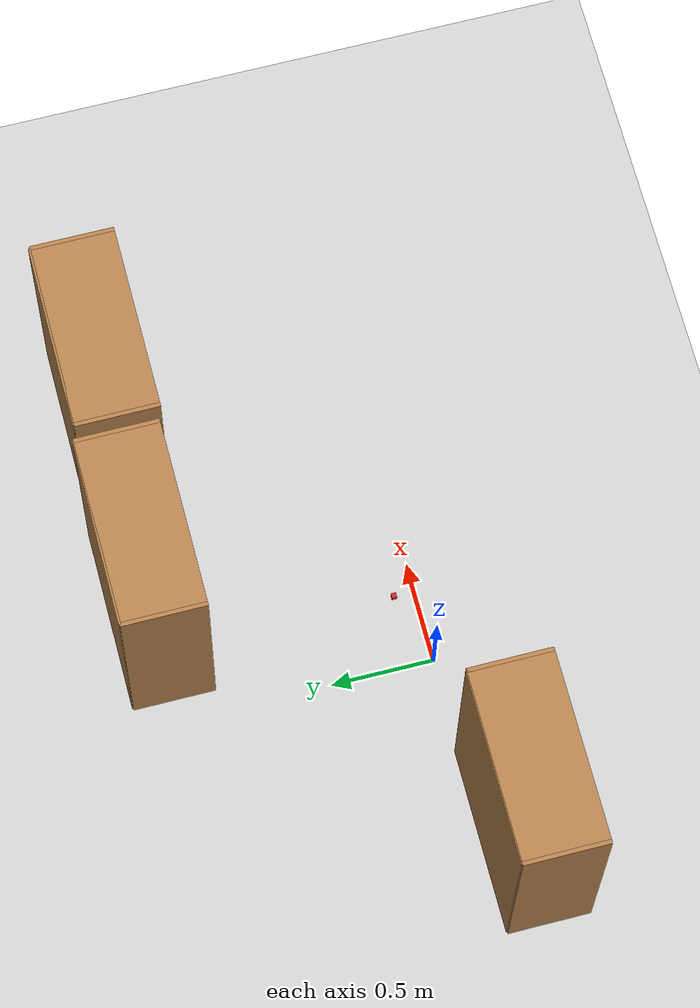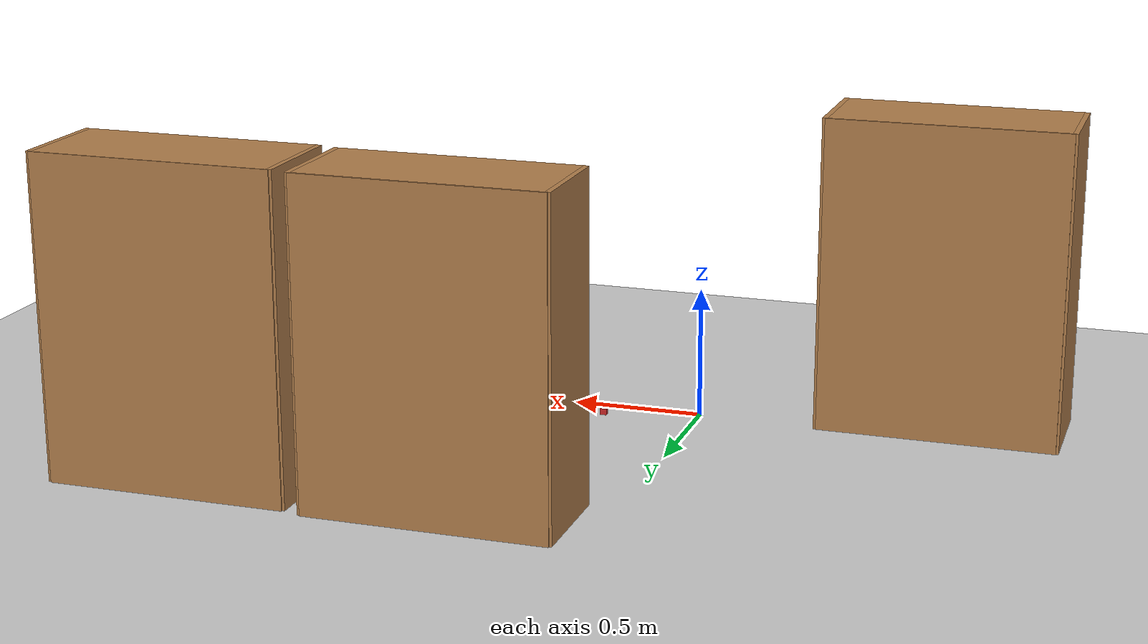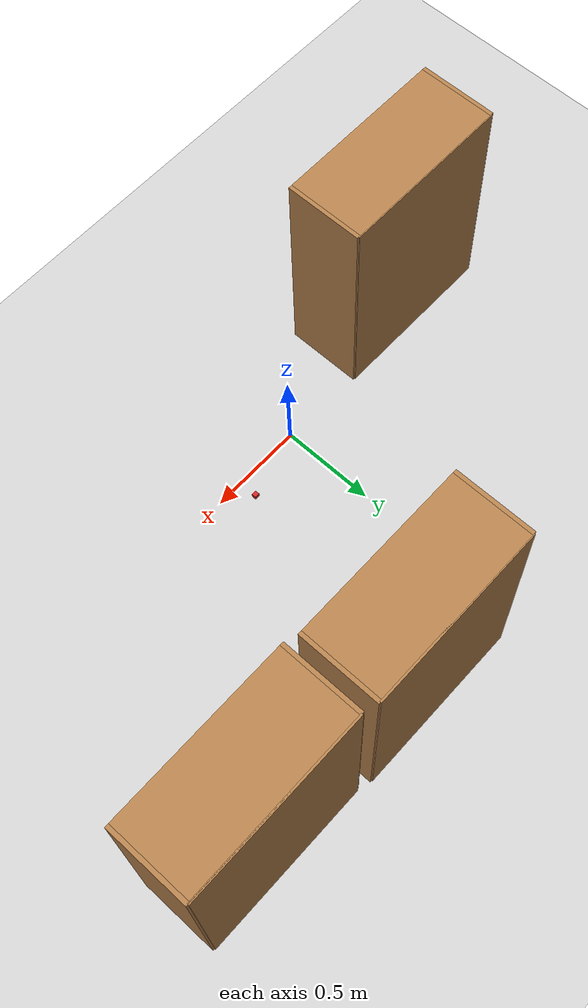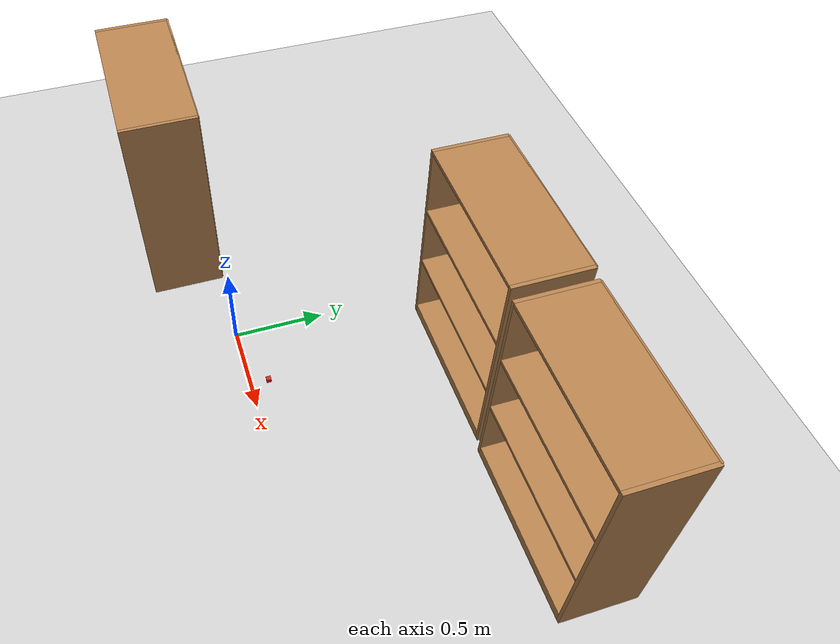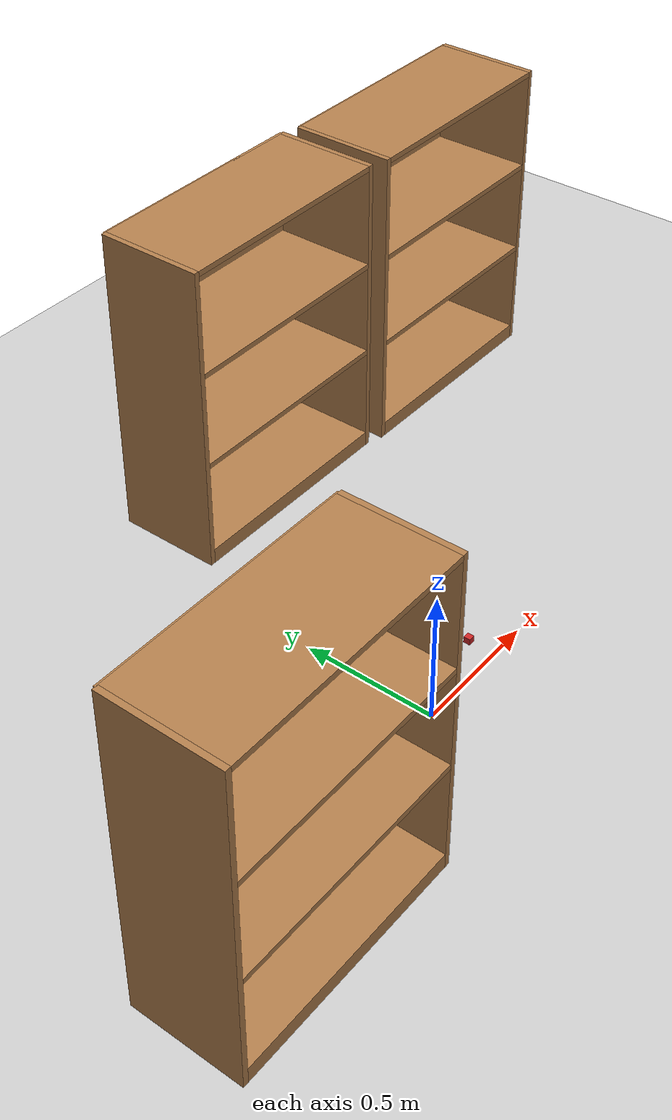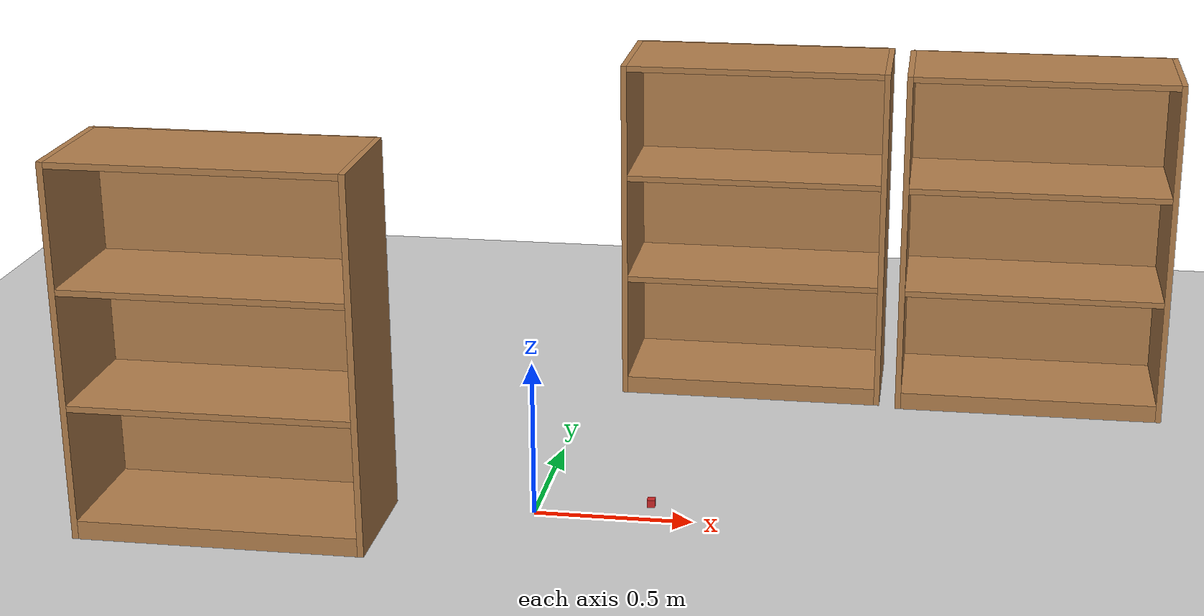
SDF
<sdf version="1.7">
 <world name="default">
  <plugin name="gazebo_link_attacher" filename="libgazebo_link_attacher.so"/>
  <light name="sun" type="directional">
   <pose>0 0 10 0 -0 0</pose>
   <diffuse>0.8 0.8 0.8 1</diffuse>
   <specular>0.2 0.2 0.2 1</specular>
   <attenuation>
    <range>1000</range>
    <constant>0.9</constant>
    <linear>0.01</linear>
    <quadratic>0.001</quadratic>
   </attenuation>
   <direction>-0.5 0.1 -0.9</direction>
   <spot><inner_angle>0</inner_angle><outer_angle>0</outer_angle><falloff>0</falloff></spot>
  </light>
  <model name="ground_plane">
   <static>1</static>
   <link name="link">
    <collision name="collision">
     <geometry><plane><normal>0 0 1</normal><size>100 100</size></plane></geometry>
     <surface><friction><ode><mu>100</mu><mu2>50</mu2></ode></friction></surface>
    </collision>
    <visual name="visual">
     <cast_shadows>0</cast_shadows>
     <geometry><plane><normal>0 0 1</normal><size>100 100</size></plane></geometry>
     <material>
      <script><uri>file://media/materials/scripts/gazebo.material</uri><name>Gazebo/Grey</name></script>
     </material>
    </visual>
   </link>
  </model>
  <gravity>0 0 -9.8</gravity>
  <magnetic_field>6e-06 2.3e-05 -4.2e-05</magnetic_field>
  <atmosphere type="adiabatic"/>
  <physics type="ode">
   <max_step_size>0.001</max_step_size>
   <real_time_factor>1</real_time_factor>
   <real_time_update_rate>1000</real_time_update_rate>
  </physics>
  <scene><ambient>0.4 0.4 0.4 1</ambient><background>0.7 0.7 0.7 1</background><shadows>1</shadows></scene>
  <audio><device>default</device></audio>
  <spherical_coordinates>
   <surface_model>EARTH_WGS84</surface_model>
   <latitude_deg>0</latitude_deg>
   <longitude_deg>0</longitude_deg>
   <elevation>0</elevation>
   <heading_deg>0</heading_deg>
  </spherical_coordinates>
  <model name="bookshelf">
   <static>1</static>
   <link name="link">
    <inertial><mass>1</mass></inertial>
    <collision name="back">
     <pose>0 0.005 0.6 0 -0 0</pose>
     <geometry><box><size>0.9 0.01 1.2</size></box></geometry>
    </collision>
    <visual name="visual1">
     <pose>0 0.005 0.6 0 -0 0</pose>
     <geometry><box><size>0.9 0.01 1.2</size></box></geometry>
     <material>
      <script><uri>file://media/materials/scripts/gazebo.material</uri><name>Gazebo/Wood</name></script>
     </material>
    </visual>
    <collision name="left_side">
     <pose>0.45 -0.195 0.6 0 -0 0</pose>
     <geometry><box><size>0.02 0.4 1.2</size></box></geometry>
    </collision>
    <visual name="visual2">
     <pose>0.45 -0.195 0.6 0 -0 0</pose>
     <geometry><box><size>0.02 0.4 1.2</size></box></geometry>
     <material>
      <script><uri>file://media/materials/scripts/gazebo.material</uri><name>Gazebo/Wood</name></script>
     </material>
    </visual>
    <collision name="right_side">
     <pose>-0.45 -0.195 0.6 0 -0 0</pose>
     <geometry><box><size>0.02 0.4 1.2</size></box></geometry>
    </collision>
    <visual name="visual3">
     <pose>-0.45 -0.195 0.6 0 -0 0</pose>
     <geometry><box><size>0.02 0.4 1.2</size></box></geometry>
     <material>
      <script><uri>file://media/materials/scripts/gazebo.material</uri><name>Gazebo/Wood</name></script>
     </material>
    </visual>
    <collision name="bottom">
     <pose>0 -0.195 0.03 0 -0 0</pose>
     <geometry><box><size>0.88 0.4 0.06</size></box></geometry>
    </collision>
    <visual name="visual4">
     <pose>0 -0.195 0.03 0 -0 0</pose>
     <geometry><box><size>0.88 0.4 0.06</size></box></geometry>
     <material>
      <script><uri>file://media/materials/scripts/gazebo.material</uri><name>Gazebo/Wood</name></script>
     </material>
    </visual>
    <collision name="top">
     <pose>0 -0.195 1.19 0 -0 0</pose>
     <geometry><box><size>0.88 0.4 0.02</size></box></geometry>
    </collision>
    <visual name="visual5">
     <pose>0 -0.195 1.19 0 -0 0</pose>
     <geometry><box><size>0.88 0.4 0.02</size></box></geometry>
     <material>
      <script><uri>file://media/materials/scripts/gazebo.material</uri><name>Gazebo/Wood</name></script>
     </material>
    </visual>
    <collision name="low_shelf">
     <pose>0 -0.195 0.43 0 -0 0</pose>
     <geometry><box><size>0.88 0.4 0.02</size></box></geometry>
    </collision>
    <visual name="visual6">
     <pose>0 -0.195 0.43 0 -0 0</pose>
     <geometry><box><size>0.88 0.4 0.02</size></box></geometry>
     <material>
      <script><uri>file://media/materials/scripts/gazebo.material</uri><name>Gazebo/Wood</name></script>
     </material>
    </visual>
    <collision name="high_shelf">
     <pose>0 -0.195 0.8 0 -0 0</pose>
     <geometry><box><size>0.88 0.4 0.02</size></box></geometry>
    </collision>
    <visual name="visual7">
     <pose>0 -0.195 0.8 0 -0 0</pose>
     <geometry><box><size>0.88 0.4 0.02</size></box></geometry>
     <material>
      <script><uri>file://media/materials/scripts/gazebo.material</uri><name>Gazebo/Wood</name></script>
     </material>
    </visual>
   </link>
   <pose>0.574773 1.43115 0 0 -0 0</pose>
  </model>
  <model name="bookshelf_0">
   <static>1</static>
   <link name="link">
    <inertial><mass>1</mass></inertial>
    <collision name="back">
     <pose>0 0.005 0.6 0 -0 0</pose>
     <geometry><box><size>0.9 0.01 1.2</size></box></geometry>
    </collision>
    <visual name="visual1">
     <pose>0 0.005 0.6 0 -0 0</pose>
     <geometry><box><size>0.9 0.01 1.2</size></box></geometry>
     <material>
      <script><uri>file://media/materials/scripts/gazebo.material</uri><name>Gazebo/Wood</name></script>
     </material>
    </visual>
    <collision name="left_side">
     <pose>0.45 -0.195 0.6 0 -0 0</pose>
     <geometry><box><size>0.02 0.4 1.2</size></box></geometry>
    </collision>
    <visual name="visual2">
     <pose>0.45 -0.195 0.6 0 -0 0</pose>
     <geometry><box><size>0.02 0.4 1.2</size></box></geometry>
     <material>
      <script><uri>file://media/materials/scripts/gazebo.material</uri><name>Gazebo/Wood</name></script>
     </material>
    </visual>
    <collision name="right_side">
     <pose>-0.45 -0.195 0.6 0 -0 0</pose>
     <geometry><box><size>0.02 0.4 1.2</size></box></geometry>
    </collision>
    <visual name="visual3">
     <pose>-0.45 -0.195 0.6 0 -0 0</pose>
     <geometry><box><size>0.02 0.4 1.2</size></box></geometry>
     <material>
      <script><uri>file://media/materials/scripts/gazebo.material</uri><name>Gazebo/Wood</name></script>
     </material>
    </visual>
    <collision name="bottom">
     <pose>0 -0.195 0.03 0 -0 0</pose>
     <geometry><box><size>0.88 0.4 0.06</size></box></geometry>
    </collision>
    <visual name="visual4">
     <pose>0 -0.195 0.03 0 -0 0</pose>
     <geometry><box><size>0.88 0.4 0.06</size></box></geometry>
     <material>
      <script><uri>file://media/materials/scripts/gazebo.material</uri><name>Gazebo/Wood</name></script>
     </material>
    </visual>
    <collision name="top">
     <pose>0 -0.195 1.19 0 -0 0</pose>
     <geometry><box><size>0.88 0.4 0.02</size></box></geometry>
    </collision>
    <visual name="visual5">
     <pose>0 -0.195 1.19 0 -0 0</pose>
     <geometry><box><size>0.88 0.4 0.02</size></box></geometry>
     <material>
      <script><uri>file://media/materials/scripts/gazebo.material</uri><name>Gazebo/Wood</name></script>
     </material>
    </visual>
    <collision name="low_shelf">
     <pose>0 -0.195 0.43 0 -0 0</pose>
     <geometry><box><size>0.88 0.4 0.02</size></box></geometry>
    </collision>
    <visual name="visual6">
     <pose>0 -0.195 0.43 0 -0 0</pose>
     <geometry><box><size>0.88 0.4 0.02</size></box></geometry>
     <material>
      <script><uri>file://media/materials/scripts/gazebo.material</uri><name>Gazebo/Wood</name></script>
     </material>
    </visual>
    <collision name="high_shelf">
     <pose>0 -0.195 0.8 0 -0 0</pose>
     <geometry><box><size>0.88 0.4 0.02</size></box></geometry>
    </collision>
    <visual name="visual7">
     <pose>0 -0.195 0.8 0 -0 0</pose>
     <geometry><box><size>0.88 0.4 0.02</size></box></geometry>
     <material>
      <script><uri>file://media/materials/scripts/gazebo.material</uri><name>Gazebo/Wood</name></script>
     </material>
    </visual>
   </link>
   <pose>1.55048 1.41069 0 0 -0 0</pose>
  </model>
  <model name="bookshelf_1">
   <static>1</static>
   <link name="link">
    <inertial><mass>1</mass></inertial>
    <collision name="back">
     <pose>0 0.005 0.6 0 -0 0</pose>
     <geometry><box><size>0.9 0.01 1.2</size></box></geometry>
    </collision>
    <visual name="visual1">
     <pose>0 0.005 0.6 0 -0 0</pose>
     <geometry><box><size>0.9 0.01 1.2</size></box></geometry>
     <material>
      <script><uri>file://media/materials/scripts/gazebo.material</uri><name>Gazebo/Wood</name></script>
     </material>
    </visual>
    <collision name="left_side">
     <pose>0.45 -0.195 0.6 0 -0 0</pose>
     <geometry><box><size>0.02 0.4 1.2</size></box></geometry>
    </collision>
    <visual name="visual2">
     <pose>0.45 -0.195 0.6 0 -0 0</pose>
     <geometry><box><size>0.02 0.4 1.2</size></box></geometry>
     <material>
      <script><uri>file://media/materials/scripts/gazebo.material</uri><name>Gazebo/Wood</name></script>
     </material>
    </visual>
    <collision name="right_side">
     <pose>-0.45 -0.195 0.6 0 -0 0</pose>
     <geometry><box><size>0.02 0.4 1.2</size></box></geometry>
    </collision>
    <visual name="visual3">
     <pose>-0.45 -0.195 0.6 0 -0 0</pose>
     <geometry><box><size>0.02 0.4 1.2</size></box></geometry>
     <material>
      <script><uri>file://media/materials/scripts/gazebo.material</uri><name>Gazebo/Wood</name></script>
     </material>
    </visual>
    <collision name="bottom">
     <pose>0 -0.195 0.03 0 -0 0</pose>
     <geometry><box><size>0.88 0.4 0.06</size></box></geometry>
    </collision>
    <visual name="visual4">
     <pose>0 -0.195 0.03 0 -0 0</pose>
     <geometry><box><size>0.88 0.4 0.06</size></box></geometry>
     <material>
      <script><uri>file://media/materials/scripts/gazebo.material</uri><name>Gazebo/Wood</name></script>
     </material>
    </visual>
    <collision name="top">
     <pose>0 -0.195 1.19 0 -0 0</pose>
     <geometry><box><size>0.88 0.4 0.02</size></box></geometry>
    </collision>
    <visual name="visual5">
     <pose>0 -0.195 1.19 0 -0 0</pose>
     <geometry><box><size>0.88 0.4 0.02</size></box></geometry>
     <material>
      <script><uri>file://media/materials/scripts/gazebo.material</uri><name>Gazebo/Wood</name></script>
     </material>
    </visual>
    <collision name="low_shelf">
     <pose>0 -0.195 0.43 0 -0 0</pose>
     <geometry><box><size>0.88 0.4 0.02</size></box></geometry>
    </collision>
    <visual name="visual6">
     <pose>0 -0.195 0.43 0 -0 0</pose>
     <geometry><box><size>0.88 0.4 0.02</size></box></geometry>
     <material>
      <script><uri>file://media/materials/scripts/gazebo.material</uri><name>Gazebo/Wood</name></script>
     </material>
    </visual>
    <collision name="high_shelf">
     <pose>0 -0.195 0.8 0 -0 0</pose>
     <geometry><box><size>0.88 0.4 0.02</size></box></geometry>
    </collision>
    <visual name="visual7">
     <pose>0 -0.195 0.8 0 -0 0</pose>
     <geometry><box><size>0.88 0.4 0.02</size></box></geometry>
     <material>
      <script><uri>file://media/materials/scripts/gazebo.material</uri><name>Gazebo/Wood</name></script>
     </material>
    </visual>
   </link>
   <pose>-0.909246 0.013578 0 0 -0 0</pose>
  </model>
  <model name="wood_cube_red">
   <link name="link">
    <pose>-0 0 0.0125 0 -0 0</pose>
    <inertial>
     <mass>0.0073</mass>
     <inertia><ixx>7.6e-07</ixx><ixy>0</ixy><ixz>0</ixz><iyy>7.6e-07</iyy><iyz>0</iyz><izz>7.6e-07</izz></inertia>
    </inertial>
    <visual name="visual">
     <geometry><box><size>0.025 0.025 0.025</size></box></geometry>
     <material>
      <script><uri>file://media/materials/scripts/gazebo.material</uri><name>Gazebo/Red</name></script>
      <shader type="pixel"><normal_map>__default__</normal_map></shader>
      <ambient>1 0 0 1</ambient>
      <diffuse>1 0 0 1</diffuse>
      <specular>0.1 0.1 0.1 1</specular>
      <emissive>0 0 0 1</emissive>
     </material>
    </visual>
    <collision name="collision">
     <geometry><box><size>0.025 0.025 0.025</size></box></geometry>
     <surface>
      <friction>
       <ode><mu>1</mu><mu2>1</mu2><fdir1>0 0 0</fdir1><slip1>0</slip1><slip2>0</slip2></ode>
       <torsional>
        <coefficient>1</coefficient>
        <patch_radius>0</patch_radius>
        <surface_radius>0.01</surface_radius>
        <use_patch_radius>0</use_patch_radius>
        <ode><slip>0</slip></ode>
       </torsional>
      </friction>
      <bounce><restitution_coefficient>0</restitution_coefficient><threshold>1e+06</threshold></bounce>
      <contact>
       <collide_without_contact>0</collide_without_contact>
       <collide_without_contact_bitmask>1</collide_without_contact_bitmask>
       <collide_bitmask>1</collide_bitmask>
       <ode>
        <soft_cfm>0</soft_cfm>
        <soft_erp>0.2</soft_erp>
        <kp>100000</kp>
        <kd>100</kd>
        <max_vel>100</max_vel>
        <min_depth>0.001</min_depth>
       </ode>
       <bullet>
        <split_impulse>1</split_impulse>
        <split_impulse_penetration_threshold>-0.01</split_impulse_penetration_threshold>
        <soft_cfm>0</soft_cfm>
        <soft_erp>0.2</soft_erp>
        <kp>100000</kp>
        <kd>100</kd>
       </bullet>
      </contact>
     </surface>
    </collision>
   </link>
   <static>0</static>
   <pose>0.356061 0.100608 -0.000453 6e-05 -6e-05 0</pose>
  </model>
 </world>
</sdf>
